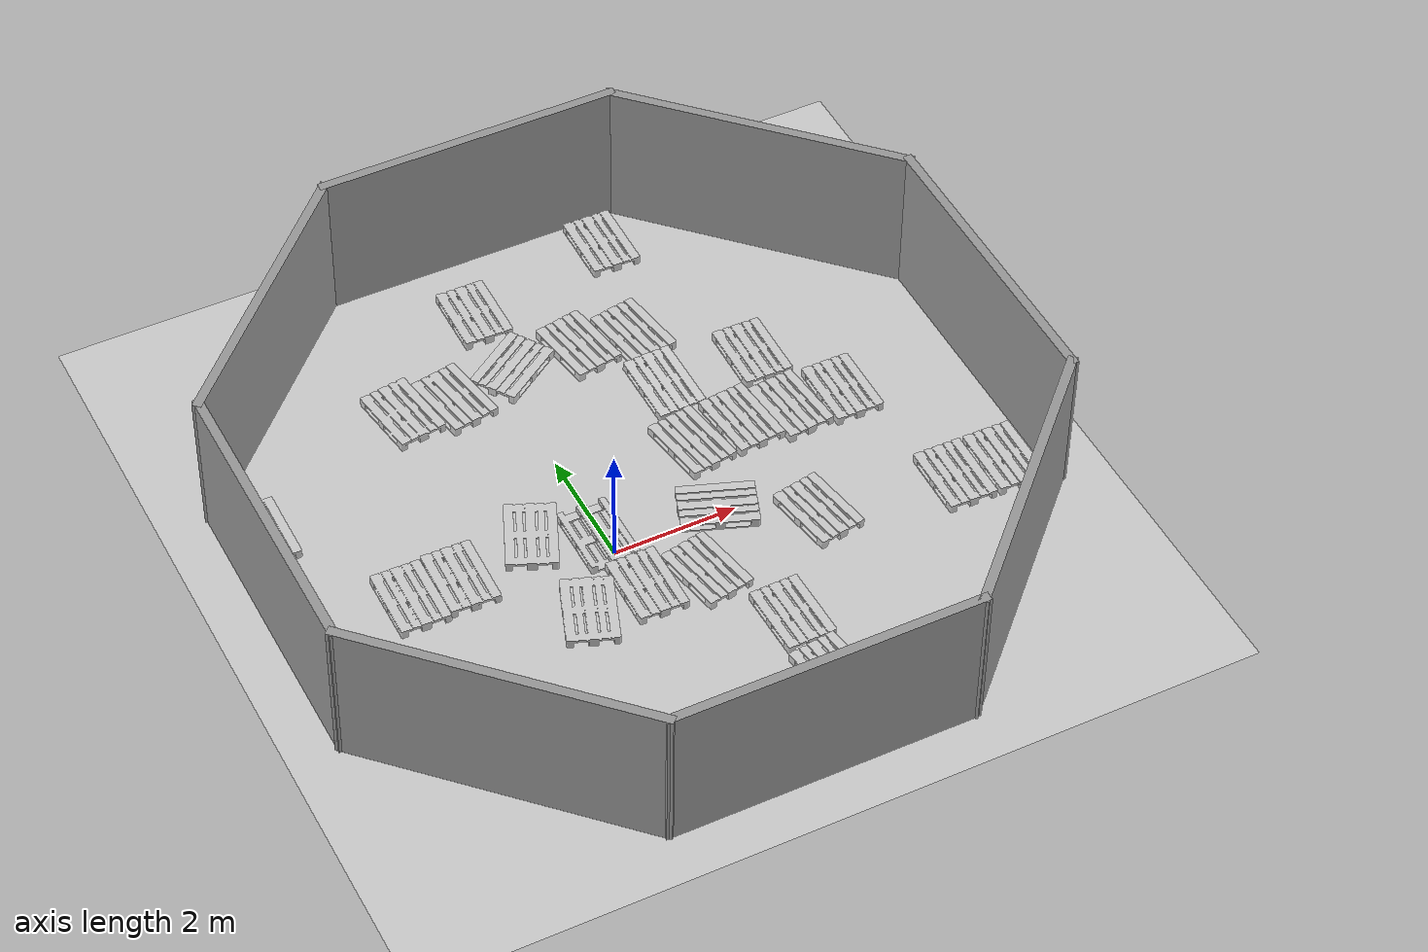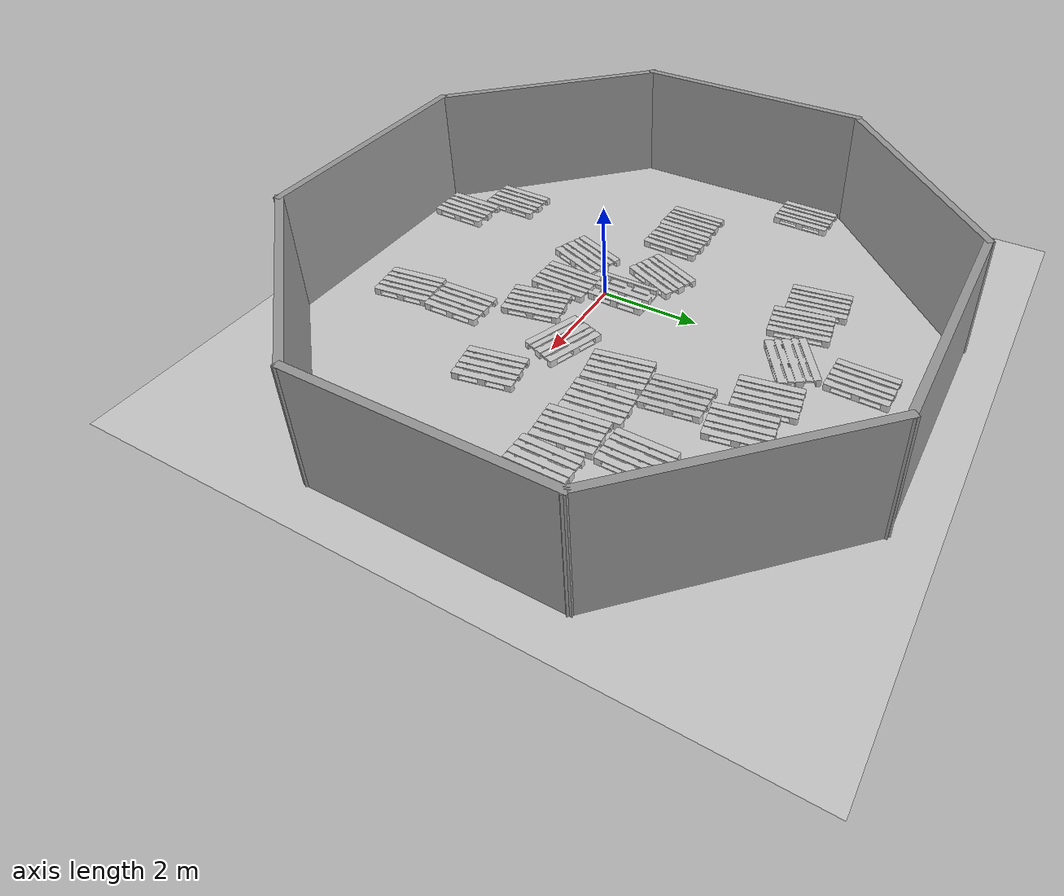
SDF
<sdf version="1.7">
 <world name="default">
  <light name="sun" type="directional">
   <pose>0 0 10 0 -0 0</pose>
   <diffuse>0.8 0.8 0.8 1</diffuse>
   <specular>0.2 0.2 0.2 1</specular>
   <attenuation>
    <range>1000</range>
    <constant>0.9</constant>
    <linear>0.01</linear>
    <quadratic>0.001</quadratic>
   </attenuation>
   <direction>-0.5 0.1 -0.9</direction>
   <spot><inner_angle>0</inner_angle><outer_angle>0</outer_angle><falloff>0</falloff></spot>
  </light>
  <model name="ground_plane">
   <static>1</static>
   <link name="link">
    <collision name="collision">
     <geometry><plane><normal>0 0 1</normal><size>100 100</size></plane></geometry>
     <surface>
      <contact><collide_bitmask>65535</collide_bitmask></contact>
      <friction><ode><mu>100</mu><mu2>50</mu2></ode></friction>
     </surface>
    </collision>
    <visual name="visual">
     <cast_shadows>0</cast_shadows>
     <geometry><plane><normal>0 0 1</normal><size>100 100</size></plane></geometry>
     <material>
      <script><uri>file://media/materials/scripts/gazebo.material</uri><name>Gazebo/Grey</name></script>
     </material>
    </visual>
   </link>
  </model>
  <gravity>0 0 -9.8</gravity>
  <magnetic_field>6e-06 2.3e-05 -4.2e-05</magnetic_field>
  <atmosphere type="adiabatic"/>
  <physics type="ode">
   <max_step_size>0.001</max_step_size>
   <real_time_factor>1</real_time_factor>
   <real_time_update_rate>1000</real_time_update_rate>
  </physics>
  <scene><ambient>0.4 0.4 0.4 1</ambient><background>0.7 0.7 0.7 1</background><shadows>1</shadows></scene>
  <audio><device>default</device></audio>
  <spherical_coordinates>
   <surface_model>EARTH_WGS84</surface_model>
   <latitude_deg>0</latitude_deg>
   <longitude_deg>0</longitude_deg>
   <elevation>0</elevation>
   <heading_deg>0</heading_deg>
  </spherical_coordinates>
  <model name="main.world">
   <pose>0.785892 0.826481 0 0 -0 0</pose>
   <link name="Wall_16">
    <collision name="Wall_16_Collision">
     <geometry><box><size>5 0.15 2.5</size></box></geometry>
     <pose>0 0 1.25 0 -0 0</pose>
    </collision>
    <visual name="Wall_16_Visual">
     <pose>0 0 1.25 0 -0 0</pose>
     <geometry><box><size>5 0.15 2.5</size></box></geometry>
     <material>
      <script><uri>file://media/materials/scripts/gazebo.material</uri><name>Gazebo/Grey</name></script>
      <ambient>1 1 1 1</ambient>
     </material>
     <meta><layer>0</layer></meta>
    </visual>
    <pose>0 -5.85447 0 0 -0 0</pose>
   </link>
   <link name="Wall_17">
    <collision name="Wall_17_Collision">
     <geometry><box><size>5 0.15 2.5</size></box></geometry>
     <pose>0 0 1.25 0 -0 0</pose>
    </collision>
    <visual name="Wall_17_Visual">
     <pose>0 0 1.25 0 -0 0</pose>
     <geometry><box><size>5 0.15 2.5</size></box></geometry>
     <material>
      <script><uri>file://media/materials/scripts/gazebo.material</uri><name>Gazebo/Grey</name></script>
      <ambient>1 1 1 1</ambient>
     </material>
     <meta><layer>0</layer></meta>
    </visual>
    <pose>4.13973 -4.13973 0 0 -0 0.785398</pose>
   </link>
   <link name="Wall_18">
    <collision name="Wall_18_Collision">
     <geometry><box><size>5 0.15 2.5</size></box></geometry>
     <pose>0 0 1.25 0 -0 0</pose>
    </collision>
    <visual name="Wall_18_Visual">
     <pose>0 0 1.25 0 -0 0</pose>
     <geometry><box><size>5 0.15 2.5</size></box></geometry>
     <material>
      <script><uri>file://media/materials/scripts/gazebo.material</uri><name>Gazebo/Grey</name></script>
      <ambient>1 1 1 1</ambient>
     </material>
     <meta><layer>0</layer></meta>
    </visual>
    <pose>5.85447 -0 0 0 -0 1.5708</pose>
   </link>
   <link name="Wall_19">
    <collision name="Wall_19_Collision">
     <geometry><box><size>5 0.15 2.5</size></box></geometry>
     <pose>0 0 1.25 0 -0 0</pose>
    </collision>
    <visual name="Wall_19_Visual">
     <pose>0 0 1.25 0 -0 0</pose>
     <geometry><box><size>5 0.15 2.5</size></box></geometry>
     <material>
      <script><uri>file://media/materials/scripts/gazebo.material</uri><name>Gazebo/Grey</name></script>
      <ambient>1 1 1 1</ambient>
     </material>
     <meta><layer>0</layer></meta>
    </visual>
    <pose>4.13973 4.13973 0 0 -0 2.35619</pose>
   </link>
   <link name="Wall_20">
    <collision name="Wall_20_Collision">
     <geometry><box><size>5 0.15 2.5</size></box></geometry>
     <pose>0 0 1.25 0 -0 0</pose>
    </collision>
    <visual name="Wall_20_Visual">
     <pose>0 0 1.25 0 -0 0</pose>
     <geometry><box><size>5 0.15 2.5</size></box></geometry>
     <material>
      <script><uri>file://media/materials/scripts/gazebo.material</uri><name>Gazebo/Grey</name></script>
      <ambient>1 1 1 1</ambient>
     </material>
     <meta><layer>0</layer></meta>
    </visual>
    <pose>0 5.85447 0 0 -0 3.14159</pose>
   </link>
   <link name="Wall_21">
    <collision name="Wall_21_Collision">
     <geometry><box><size>5 0.15 2.5</size></box></geometry>
     <pose>0 0 1.25 0 -0 0</pose>
    </collision>
    <visual name="Wall_21_Visual">
     <pose>0 0 1.25 0 -0 0</pose>
     <geometry><box><size>5 0.15 2.5</size></box></geometry>
     <material>
      <script><uri>file://media/materials/scripts/gazebo.material</uri><name>Gazebo/Grey</name></script>
      <ambient>1 1 1 1</ambient>
     </material>
     <meta><layer>0</layer></meta>
    </visual>
    <pose>-4.13973 4.13973 0 0 -0 -2.35619</pose>
   </link>
   <link name="Wall_22">
    <collision name="Wall_22_Collision">
     <geometry><box><size>5 0.15 2.5</size></box></geometry>
     <pose>0 0 1.25 0 -0 0</pose>
    </collision>
    <visual name="Wall_22_Visual">
     <pose>0 0 1.25 0 -0 0</pose>
     <geometry><box><size>5 0.15 2.5</size></box></geometry>
     <material>
      <script><uri>file://media/materials/scripts/gazebo.material</uri><name>Gazebo/Grey</name></script>
      <ambient>1 1 1 1</ambient>
     </material>
     <meta><layer>0</layer></meta>
    </visual>
    <pose>-5.85447 -0 0 0 -0 -1.5708</pose>
   </link>
   <link name="Wall_23">
    <collision name="Wall_23_Collision">
     <geometry><box><size>5 0.15 2.5</size></box></geometry>
     <pose>0 0 1.25 0 -0 0</pose>
    </collision>
    <visual name="Wall_23_Visual">
     <pose>0 0 1.25 0 -0 0</pose>
     <geometry><box><size>5 0.15 2.5</size></box></geometry>
     <material>
      <script><uri>file://media/materials/scripts/gazebo.material</uri><name>Gazebo/Grey</name></script>
      <ambient>1 1 1 1</ambient>
     </material>
     <meta><layer>0</layer></meta>
    </visual>
    <pose>-4.13973 -4.13973 0 0 -0 -0.785398</pose>
   </link>
   <static>1</static>
  </model>
  <model name="euro_pallet">
   <link name="link">
    <inertial>
     <mass>20</mass>
     <inertia><ixx>2.43</ixx><ixy>0</ixy><ixz>0</ixz><iyy>1.1</iyy><iyz>0</iyz><izz>3.47</izz></inertia>
    </inertial>
    <collision name="collision">
     <pose>0 0 0.05 0 -0 0</pose>
     <geometry><mesh><uri>model://euro_pallet/meshes/pallet.dae</uri><scale>0.1 0.1 0.1</scale></mesh></geometry>
    </collision>
    <visual name="visual">
     <pose>0 0 0.05 0 -0 0</pose>
     <geometry><mesh><uri>model://euro_pallet/meshes/pallet.dae</uri><scale>0.1 0.1 0.1</scale></mesh></geometry>
    </visual>
   </link>
   <pose>2.01226 1.43541 0.072 0 -0 0.170765</pose>
  </model>
  <model name="euro_pallet_0">
   <link name="link">
    <inertial>
     <mass>20</mass>
     <inertia><ixx>2.43</ixx><ixy>0</ixy><ixz>0</ixz><iyy>1.1</iyy><iyz>0</iyz><izz>3.47</izz></inertia>
    </inertial>
    <collision name="collision">
     <pose>0 0 0.05 0 -0 0</pose>
     <geometry><mesh><uri>model://euro_pallet/meshes/pallet.dae</uri><scale>0.1 0.1 0.1</scale></mesh></geometry>
    </collision>
    <visual name="visual">
     <pose>0 0 0.05 0 -0 0</pose>
     <geometry><mesh><uri>model://euro_pallet/meshes/pallet.dae</uri><scale>0.1 0.1 0.1</scale></mesh></geometry>
    </visual>
   </link>
   <pose>2.16685 2.69036 0.126113 0.090813 -1e-05 0.044705</pose>
  </model>
  <model name="euro_pallet_1">
   <link name="link">
    <inertial>
     <mass>20</mass>
     <inertia><ixx>2.43</ixx><ixy>0</ixy><ixz>0</ixz><iyy>1.1</iyy><iyz>0</iyz><izz>3.47</izz></inertia>
    </inertial>
    <collision name="collision">
     <pose>0 0 0.05 0 -0 0</pose>
     <geometry><mesh><uri>model://euro_pallet/meshes/pallet.dae</uri><scale>0.1 0.1 0.1</scale></mesh></geometry>
    </collision>
    <visual name="visual">
     <pose>0 0 0.05 0 -0 0</pose>
     <geometry><mesh><uri>model://euro_pallet/meshes/pallet.dae</uri><scale>0.1 0.1 0.1</scale></mesh></geometry>
    </visual>
   </link>
   <pose>1.75225 0.097133 0.072 0 -0 1.21802</pose>
  </model>
  <model name="euro_pallet_2">
   <link name="link">
    <inertial>
     <mass>20</mass>
     <inertia><ixx>2.43</ixx><ixy>0</ixy><ixz>0</ixz><iyy>1.1</iyy><iyz>0</iyz><izz>3.47</izz></inertia>
    </inertial>
    <collision name="collision">
     <pose>0 0 0.05 0 -0 0</pose>
     <geometry><mesh><uri>model://euro_pallet/meshes/pallet.dae</uri><scale>0.1 0.1 0.1</scale></mesh></geometry>
    </collision>
    <visual name="visual">
     <pose>0 0 0.05 0 -0 0</pose>
     <geometry><mesh><uri>model://euro_pallet/meshes/pallet.dae</uri><scale>0.1 0.1 0.1</scale></mesh></geometry>
    </visual>
   </link>
   <pose>3.05894 -0.642844 0.071997 0 -1e-05 0.181736</pose>
  </model>
  <model name="euro_pallet_3">
   <link name="link">
    <inertial>
     <mass>20</mass>
     <inertia><ixx>2.43</ixx><ixy>0</ixy><ixz>0</ixz><iyy>1.1</iyy><iyz>0</iyz><izz>3.47</izz></inertia>
    </inertial>
    <collision name="collision">
     <pose>0 0 0.05 0 -0 0</pose>
     <geometry><mesh><uri>model://euro_pallet/meshes/pallet.dae</uri><scale>0.1 0.1 0.1</scale></mesh></geometry>
    </collision>
    <visual name="visual">
     <pose>0 0 0.05 0 -0 0</pose>
     <geometry><mesh><uri>model://euro_pallet/meshes/pallet.dae</uri><scale>0.1 0.1 0.1</scale></mesh></geometry>
    </visual>
   </link>
   <pose>1.75622 -2.27806 0.072 0 -0 0.023827</pose>
  </model>
  <model name="euro_pallet_4">
   <link name="link">
    <inertial>
     <mass>20</mass>
     <inertia><ixx>2.43</ixx><ixy>0</ixy><ixz>0</ixz><iyy>1.1</iyy><iyz>0</iyz><izz>3.47</izz></inertia>
    </inertial>
    <collision name="collision">
     <pose>0 0 0.05 0 -0 0</pose>
     <geometry><mesh><uri>model://euro_pallet/meshes/pallet.dae</uri><scale>0.1 0.1 0.1</scale></mesh></geometry>
    </collision>
    <visual name="visual">
     <pose>0 0 0.05 0 -0 0</pose>
     <geometry><mesh><uri>model://euro_pallet/meshes/pallet.dae</uri><scale>0.1 0.1 0.1</scale></mesh></geometry>
    </visual>
   </link>
   <pose>1.03301 -0.964688 0.072 0 -0 0.197366</pose>
  </model>
  <model name="euro_pallet_5">
   <link name="link">
    <inertial>
     <mass>20</mass>
     <inertia><ixx>2.43</ixx><ixy>0</ixy><ixz>0</ixz><iyy>1.1</iyy><iyz>0</iyz><izz>3.47</izz></inertia>
    </inertial>
    <collision name="collision">
     <pose>0 0 0.05 0 -0 0</pose>
     <geometry><mesh><uri>model://euro_pallet/meshes/pallet.dae</uri><scale>0.1 0.1 0.1</scale></mesh></geometry>
    </collision>
    <visual name="visual">
     <pose>0 0 0.05 0 -0 0</pose>
     <geometry><mesh><uri>model://euro_pallet/meshes/pallet.dae</uri><scale>0.1 0.1 0.1</scale></mesh></geometry>
    </visual>
   </link>
   <pose>0.114829 -0.841092 0.071998 -2e-06 -1.2e-05 -0.008749</pose>
  </model>
  <model name="euro_pallet_6">
   <link name="link">
    <inertial>
     <mass>20</mass>
     <inertia><ixx>2.43</ixx><ixy>0</ixy><ixz>0</ixz><iyy>1.1</iyy><iyz>0</iyz><izz>3.47</izz></inertia>
    </inertial>
    <collision name="collision">
     <pose>0 0 0.05 0 -0 0</pose>
     <geometry><mesh><uri>model://euro_pallet/meshes/pallet.dae</uri><scale>0.1 0.1 0.1</scale></mesh></geometry>
    </collision>
    <visual name="visual">
     <pose>0 0 0.05 0 -0 0</pose>
     <geometry><mesh><uri>model://euro_pallet/meshes/pallet.dae</uri><scale>0.1 0.1 0.1</scale></mesh></geometry>
    </visual>
   </link>
   <pose>-0.856095 -0.924611 0.071993 0 2.3e-05 -0.355495</pose>
  </model>
  <model name="euro_pallet_7">
   <link name="link">
    <inertial>
     <mass>20</mass>
     <inertia><ixx>2.43</ixx><ixy>0</ixy><ixz>0</ixz><iyy>1.1</iyy><iyz>0</iyz><izz>3.47</izz></inertia>
    </inertial>
    <collision name="collision">
     <pose>0 0 0.05 0 -0 0</pose>
     <geometry><mesh><uri>model://euro_pallet/meshes/pallet.dae</uri><scale>0.1 0.1 0.1</scale></mesh></geometry>
    </collision>
    <visual name="visual">
     <pose>0 0 0.05 0 -0 0</pose>
     <geometry><mesh><uri>model://euro_pallet/meshes/pallet.dae</uri><scale>0.1 0.1 0.1</scale></mesh></geometry>
    </visual>
   </link>
   <pose>2.25505 3.93043 0.071921 0.000139 -0.000157 0.16789</pose>
  </model>
  <model name="euro_pallet_8">
   <link name="link">
    <inertial>
     <mass>20</mass>
     <inertia><ixx>2.43</ixx><ixy>0</ixy><ixz>0</ixz><iyy>1.1</iyy><iyz>0</iyz><izz>3.47</izz></inertia>
    </inertial>
    <collision name="collision">
     <pose>0 0 0.05 0 -0 0</pose>
     <geometry><mesh><uri>model://euro_pallet/meshes/pallet.dae</uri><scale>0.1 0.1 0.1</scale></mesh></geometry>
    </collision>
    <visual name="visual">
     <pose>0 0 0.05 0 -0 0</pose>
     <geometry><mesh><uri>model://euro_pallet/meshes/pallet.dae</uri><scale>0.1 0.1 0.1</scale></mesh></geometry>
    </visual>
   </link>
   <pose>1.37241 4.06275 0.071999 1e-06 -5e-06 0.169629</pose>
  </model>
  <model name="euro_pallet_9">
   <link name="link">
    <inertial>
     <mass>20</mass>
     <inertia><ixx>2.43</ixx><ixy>0</ixy><ixz>0</ixz><iyy>1.1</iyy><iyz>0</iyz><izz>3.47</izz></inertia>
    </inertial>
    <collision name="collision">
     <pose>0 0 0.05 0 -0 0</pose>
     <geometry><mesh><uri>model://euro_pallet/meshes/pallet.dae</uri><scale>0.1 0.1 0.1</scale></mesh></geometry>
    </collision>
    <visual name="visual">
     <pose>0 0 0.05 0 -0 0</pose>
     <geometry><mesh><uri>model://euro_pallet/meshes/pallet.dae</uri><scale>0.1 0.1 0.1</scale></mesh></geometry>
    </visual>
   </link>
   <pose>0.250938 4.08231 0.071997 0 -1e-05 -0.978633</pose>
  </model>
  <model name="euro_pallet_10">
   <link name="link">
    <inertial>
     <mass>20</mass>
     <inertia><ixx>2.43</ixx><ixy>0</ixy><ixz>0</ixz><iyy>1.1</iyy><iyz>0</iyz><izz>3.47</izz></inertia>
    </inertial>
    <collision name="collision">
     <pose>0 0 0.05 0 -0 0</pose>
     <geometry><mesh><uri>model://euro_pallet/meshes/pallet.dae</uri><scale>0.1 0.1 0.1</scale></mesh></geometry>
    </collision>
    <visual name="visual">
     <pose>0 0 0.05 0 -0 0</pose>
     <geometry><mesh><uri>model://euro_pallet/meshes/pallet.dae</uri><scale>0.1 0.1 0.1</scale></mesh></geometry>
    </visual>
   </link>
   <pose>0.210725 5.39326 0.071993 -0 2.4e-05 -0.01331</pose>
  </model>
  <model name="euro_pallet_11">
   <link name="link">
    <inertial>
     <mass>20</mass>
     <inertia><ixx>2.43</ixx><ixy>0</ixy><ixz>0</ixz><iyy>1.1</iyy><iyz>0</iyz><izz>3.47</izz></inertia>
    </inertial>
    <collision name="collision">
     <pose>0 0 0.05 0 -0 0</pose>
     <geometry><mesh><uri>model://euro_pallet/meshes/pallet.dae</uri><scale>0.1 0.1 0.1</scale></mesh></geometry>
    </collision>
    <visual name="visual">
     <pose>0 0 0.05 0 -0 0</pose>
     <geometry><mesh><uri>model://euro_pallet/meshes/pallet.dae</uri><scale>0.1 0.1 0.1</scale></mesh></geometry>
    </visual>
   </link>
   <pose>2.89725 1.52872 0.072 0 -0 0.101689</pose>
  </model>
  <model name="euro_pallet_12">
   <link name="link">
    <inertial>
     <mass>20</mass>
     <inertia><ixx>2.43</ixx><ixy>0</ixy><ixz>0</ixz><iyy>1.1</iyy><iyz>0</iyz><izz>3.47</izz></inertia>
    </inertial>
    <collision name="collision">
     <pose>0 0 0.05 0 -0 0</pose>
     <geometry><mesh><uri>model://euro_pallet/meshes/pallet.dae</uri><scale>0.1 0.1 0.1</scale></mesh></geometry>
    </collision>
    <visual name="visual">
     <pose>0 0 0.05 0 -0 0</pose>
     <geometry><mesh><uri>model://euro_pallet/meshes/pallet.dae</uri><scale>0.1 0.1 0.1</scale></mesh></geometry>
    </visual>
   </link>
   <pose>3.70512 1.45875 0.071997 0 -1e-05 0.099698</pose>
  </model>
  <model name="euro_pallet_13">
   <link name="link">
    <inertial>
     <mass>20</mass>
     <inertia><ixx>2.43</ixx><ixy>0</ixy><ixz>0</ixz><iyy>1.1</iyy><iyz>0</iyz><izz>3.47</izz></inertia>
    </inertial>
    <collision name="collision">
     <pose>0 0 0.05 0 -0 0</pose>
     <geometry><mesh><uri>model://euro_pallet/meshes/pallet.dae</uri><scale>0.1 0.1 0.1</scale></mesh></geometry>
    </collision>
    <visual name="visual">
     <pose>0 0 0.05 0 -0 0</pose>
     <geometry><mesh><uri>model://euro_pallet/meshes/pallet.dae</uri><scale>0.1 0.1 0.1</scale></mesh></geometry>
    </visual>
   </link>
   <pose>4.58131 1.42204 0.072 0 0 -0.004047</pose>
  </model>
  <model name="euro_pallet_14">
   <link name="link">
    <inertial>
     <mass>20</mass>
     <inertia><ixx>2.43</ixx><ixy>0</ixy><ixz>0</ixz><iyy>1.1</iyy><iyz>0</iyz><izz>3.47</izz></inertia>
    </inertial>
    <collision name="collision">
     <pose>0 0 0.05 0 -0 0</pose>
     <geometry><mesh><uri>model://euro_pallet/meshes/pallet.dae</uri><scale>0.1 0.1 0.1</scale></mesh></geometry>
    </collision>
    <visual name="visual">
     <pose>0 0 0.05 0 -0 0</pose>
     <geometry><mesh><uri>model://euro_pallet/meshes/pallet.dae</uri><scale>0.1 0.1 0.1</scale></mesh></geometry>
    </visual>
   </link>
   <pose>1.78771 -3.51584 0.071997 0 -1e-05 0.132496</pose>
  </model>
  <model name="euro_pallet_15">
   <link name="link">
    <inertial>
     <mass>20</mass>
     <inertia><ixx>2.43</ixx><ixy>0</ixy><ixz>0</ixz><iyy>1.1</iyy><iyz>0</iyz><izz>3.47</izz></inertia>
    </inertial>
    <collision name="collision">
     <pose>0 0 0.05 0 -0 0</pose>
     <geometry><mesh><uri>model://euro_pallet/meshes/pallet.dae</uri><scale>0.1 0.1 0.1</scale></mesh></geometry>
    </collision>
    <visual name="visual">
     <pose>0 0 0.05 0 -0 0</pose>
     <geometry><mesh><uri>model://euro_pallet/meshes/pallet.dae</uri><scale>0.1 0.1 0.1</scale></mesh></geometry>
    </visual>
   </link>
   <pose>-0.993464 0.782291 0.071993 0 2.3e-05 -0.405523</pose>
  </model>
  <model name="euro_pallet_16">
   <link name="link">
    <inertial>
     <mass>20</mass>
     <inertia><ixx>2.43</ixx><ixy>0</ixy><ixz>0</ixz><iyy>1.1</iyy><iyz>0</iyz><izz>3.47</izz></inertia>
    </inertial>
    <collision name="collision">
     <pose>0 0 0.05 0 -0 0</pose>
     <geometry><mesh><uri>model://euro_pallet/meshes/pallet.dae</uri><scale>0.1 0.1 0.1</scale></mesh></geometry>
    </collision>
    <visual name="visual">
     <pose>0 0 0.05 0 -0 0</pose>
     <geometry><mesh><uri>model://euro_pallet/meshes/pallet.dae</uri><scale>0.1 0.1 0.1</scale></mesh></geometry>
    </visual>
   </link>
   <pose>-0.091683 0.362639 0.072 -3.14159 0 -3.13994</pose>
  </model>
  <model name="euro_pallet_17">
   <link name="link">
    <inertial>
     <mass>20</mass>
     <inertia><ixx>2.43</ixx><ixy>0</ixy><ixz>0</ixz><iyy>1.1</iyy><iyz>0</iyz><izz>3.47</izz></inertia>
    </inertial>
    <collision name="collision">
     <pose>0 0 0.05 0 -0 0</pose>
     <geometry><mesh><uri>model://euro_pallet/meshes/pallet.dae</uri><scale>0.1 0.1 0.1</scale></mesh></geometry>
    </collision>
    <visual name="visual">
     <pose>0 0 0.05 0 -0 0</pose>
     <geometry><mesh><uri>model://euro_pallet/meshes/pallet.dae</uri><scale>0.1 0.1 0.1</scale></mesh></geometry>
    </visual>
   </link>
   <pose>-2.27309 0.487174 0.071997 -0 -1e-05 -0.026376</pose>
  </model>
  <model name="euro_pallet_18">
   <link name="link">
    <inertial>
     <mass>20</mass>
     <inertia><ixx>2.43</ixx><ixy>0</ixy><ixz>0</ixz><iyy>1.1</iyy><iyz>0</iyz><izz>3.47</izz></inertia>
    </inertial>
    <collision name="collision">
     <pose>0 0 0.05 0 -0 0</pose>
     <geometry><mesh><uri>model://euro_pallet/meshes/pallet.dae</uri><scale>0.1 0.1 0.1</scale></mesh></geometry>
    </collision>
    <visual name="visual">
     <pose>0 0 0.05 0 -0 0</pose>
     <geometry><mesh><uri>model://euro_pallet/meshes/pallet.dae</uri><scale>0.1 0.1 0.1</scale></mesh></geometry>
    </visual>
   </link>
   <pose>-3.08611 0.456435 0.072 0 0 -0.013016</pose>
  </model>
  <model name="euro_pallet_19">
   <link name="link">
    <inertial>
     <mass>20</mass>
     <inertia><ixx>2.43</ixx><ixy>0</ixy><ixz>0</ixz><iyy>1.1</iyy><iyz>0</iyz><izz>3.47</izz></inertia>
    </inertial>
    <collision name="collision">
     <pose>0 0 0.05 0 -0 0</pose>
     <geometry><mesh><uri>model://euro_pallet/meshes/pallet.dae</uri><scale>0.1 0.1 0.1</scale></mesh></geometry>
    </collision>
    <visual name="visual">
     <pose>0 0 0.05 0 -0 0</pose>
     <geometry><mesh><uri>model://euro_pallet/meshes/pallet.dae</uri><scale>0.1 0.1 0.1</scale></mesh></geometry>
    </visual>
   </link>
   <pose>-1.99077 -3.44282 0.072 0 0 -0.013016</pose>
  </model>
  <model name="euro_pallet_20">
   <link name="link">
    <inertial>
     <mass>20</mass>
     <inertia><ixx>2.43</ixx><ixy>0</ixy><ixz>0</ixz><iyy>1.1</iyy><iyz>0</iyz><izz>3.47</izz></inertia>
    </inertial>
    <collision name="collision">
     <pose>0 0 0.05 0 -0 0</pose>
     <geometry><mesh><uri>model://euro_pallet/meshes/pallet.dae</uri><scale>0.1 0.1 0.1</scale></mesh></geometry>
    </collision>
    <visual name="visual">
     <pose>0 0 0.05 0 -0 0</pose>
     <geometry><mesh><uri>model://euro_pallet/meshes/pallet.dae</uri><scale>0.1 0.1 0.1</scale></mesh></geometry>
    </visual>
   </link>
   <pose>-1.16116 -4.2599 0.072 0 0 -0.013016</pose>
  </model>
  <model name="euro_pallet_21">
   <link name="link">
    <inertial>
     <mass>20</mass>
     <inertia><ixx>2.43</ixx><ixy>0</ixy><ixz>0</ixz><iyy>1.1</iyy><iyz>0</iyz><izz>3.47</izz></inertia>
    </inertial>
    <collision name="collision">
     <pose>0 0 0.05 0 -0 0</pose>
     <geometry><mesh><uri>model://euro_pallet/meshes/pallet.dae</uri><scale>0.1 0.1 0.1</scale></mesh></geometry>
    </collision>
    <visual name="visual">
     <pose>0 0 0.05 0 -0 0</pose>
     <geometry><mesh><uri>model://euro_pallet/meshes/pallet.dae</uri><scale>0.1 0.1 0.1</scale></mesh></geometry>
    </visual>
   </link>
   <pose>2.69367 5.95973 0.072 0 0 -0.013016</pose>
  </model>
  <model name="euro_pallet_22">
   <link name="link">
    <inertial>
     <mass>20</mass>
     <inertia><ixx>2.43</ixx><ixy>0</ixy><ixz>0</ixz><iyy>1.1</iyy><iyz>0</iyz><izz>3.47</izz></inertia>
    </inertial>
    <collision name="collision">
     <pose>0 0 0.05 0 -0 0</pose>
     <geometry><mesh><uri>model://euro_pallet/meshes/pallet.dae</uri><scale>0.1 0.1 0.1</scale></mesh></geometry>
    </collision>
    <visual name="visual">
     <pose>0 0 0.05 0 -0 0</pose>
     <geometry><mesh><uri>model://euro_pallet/meshes/pallet.dae</uri><scale>0.1 0.1 0.1</scale></mesh></geometry>
    </visual>
   </link>
   <pose>6.07704 -0.937174 0.072 0 0 -0.013016</pose>
  </model>
  <model name="euro_pallet_23">
   <link name="link">
    <inertial>
     <mass>20</mass>
     <inertia><ixx>2.43</ixx><ixy>0</ixy><ixz>0</ixz><iyy>1.1</iyy><iyz>0</iyz><izz>3.47</izz></inertia>
    </inertial>
    <collision name="collision">
     <pose>0 0 0.05 0 -0 0</pose>
     <geometry><mesh><uri>model://euro_pallet/meshes/pallet.dae</uri><scale>0.1 0.1 0.1</scale></mesh></geometry>
    </collision>
    <visual name="visual">
     <pose>0 0 0.05 0 -0 0</pose>
     <geometry><mesh><uri>model://euro_pallet/meshes/pallet.dae</uri><scale>0.1 0.1 0.1</scale></mesh></geometry>
    </visual>
   </link>
   <pose>5.22839 -0.926339 0.072 0 0 -0.013016</pose>
  </model>
  <model name="euro_pallet_24">
   <link name="link">
    <inertial>
     <mass>20</mass>
     <inertia><ixx>2.43</ixx><ixy>0</ixy><ixz>0</ixz><iyy>1.1</iyy><iyz>0</iyz><izz>3.47</izz></inertia>
    </inertial>
    <collision name="collision">
     <pose>0 0 0.05 0 -0 0</pose>
     <geometry><mesh><uri>model://euro_pallet/meshes/pallet.dae</uri><scale>0.1 0.1 0.1</scale></mesh></geometry>
    </collision>
    <visual name="visual">
     <pose>0 0 0.05 0 -0 0</pose>
     <geometry><mesh><uri>model://euro_pallet/meshes/pallet.dae</uri><scale>0.1 0.1 0.1</scale></mesh></geometry>
    </visual>
   </link>
   <pose>-0.830195 3.85806 0.072 0 -0 0.178538</pose>
  </model>
  <model name="euro_pallet_25">
   <link name="link">
    <inertial>
     <mass>20</mass>
     <inertia><ixx>2.43</ixx><ixy>0</ixy><ixz>0</ixz><iyy>1.1</iyy><iyz>0</iyz><izz>3.47</izz></inertia>
    </inertial>
    <collision name="collision">
     <pose>0 0 0.05 0 -0 0</pose>
     <geometry><mesh><uri>model://euro_pallet/meshes/pallet.dae</uri><scale>0.1 0.1 0.1</scale></mesh></geometry>
    </collision>
    <visual name="visual">
     <pose>0 0 0.05 0 -0 0</pose>
     <geometry><mesh><uri>model://euro_pallet/meshes/pallet.dae</uri><scale>0.1 0.1 0.1</scale></mesh></geometry>
    </visual>
   </link>
   <pose>-1.66038 3.92158 0.071961 0 -0 0.150417</pose>
  </model>
  <model name="euro_pallet_26">
   <link name="link">
    <inertial>
     <mass>20</mass>
     <inertia><ixx>2.43</ixx><ixy>0</ixy><ixz>0</ixz><iyy>1.1</iyy><iyz>0</iyz><izz>3.47</izz></inertia>
    </inertial>
    <collision name="collision">
     <pose>0 0 0.05 0 -0 0</pose>
     <geometry><mesh><uri>model://euro_pallet/meshes/pallet.dae</uri><scale>0.1 0.1 0.1</scale></mesh></geometry>
    </collision>
    <visual name="visual">
     <pose>0 0 0.05 0 -0 0</pose>
     <geometry><mesh><uri>model://euro_pallet/meshes/pallet.dae</uri><scale>0.1 0.1 0.1</scale></mesh></geometry>
    </visual>
   </link>
   <pose>-4.53879 2.57829 0.072 0 0 -0.013016</pose>
  </model>
  <model name="euro_pallet_27">
   <link name="link">
    <inertial>
     <mass>20</mass>
     <inertia><ixx>2.43</ixx><ixy>0</ixy><ixz>0</ixz><iyy>1.1</iyy><iyz>0</iyz><izz>3.47</izz></inertia>
    </inertial>
    <collision name="collision">
     <pose>0 0 0.05 0 -0 0</pose>
     <geometry><mesh><uri>model://euro_pallet/meshes/pallet.dae</uri><scale>0.1 0.1 0.1</scale></mesh></geometry>
    </collision>
    <visual name="visual">
     <pose>0 0 0.05 0 -0 0</pose>
     <geometry><mesh><uri>model://euro_pallet/meshes/pallet.dae</uri><scale>0.1 0.1 0.1</scale></mesh></geometry>
    </visual>
   </link>
   <pose>3.70495 2.72755 0.072 0 0 -0.013016</pose>
  </model>
 </world>
</sdf>
